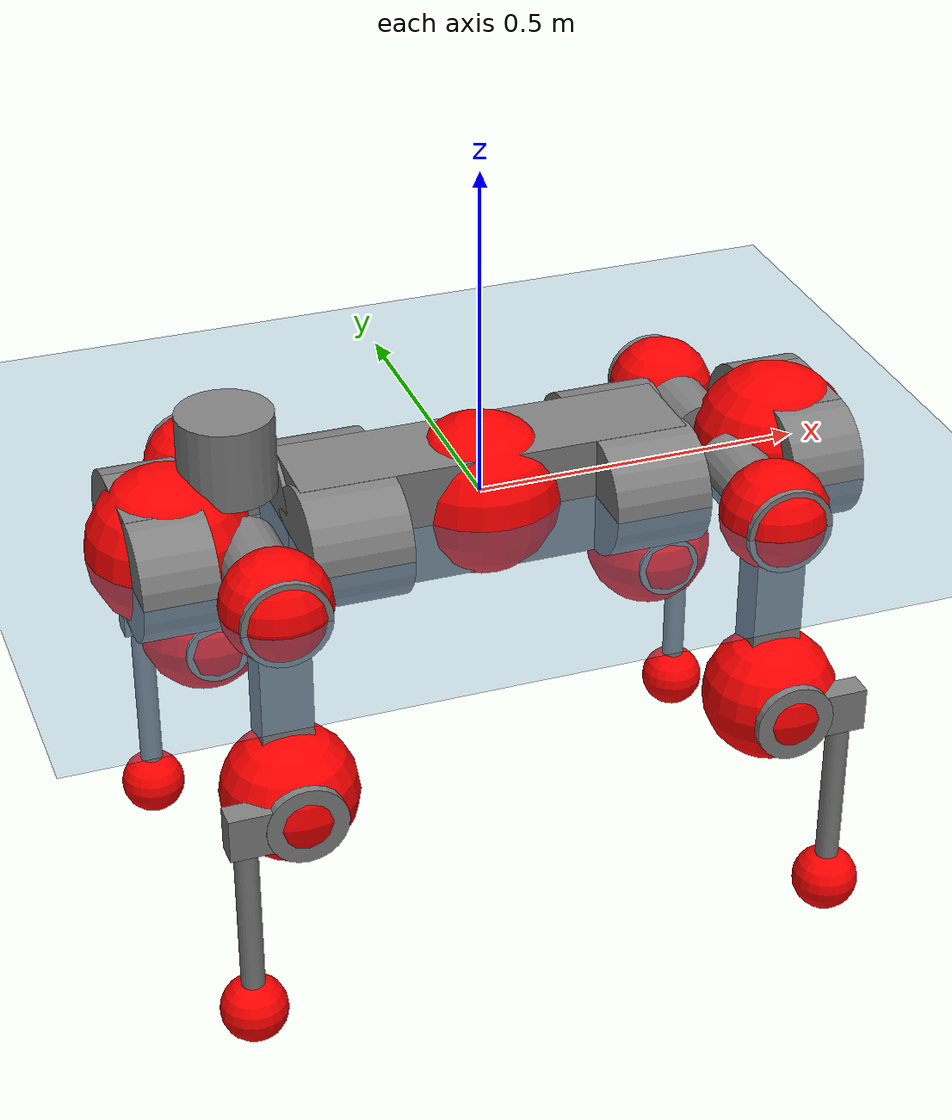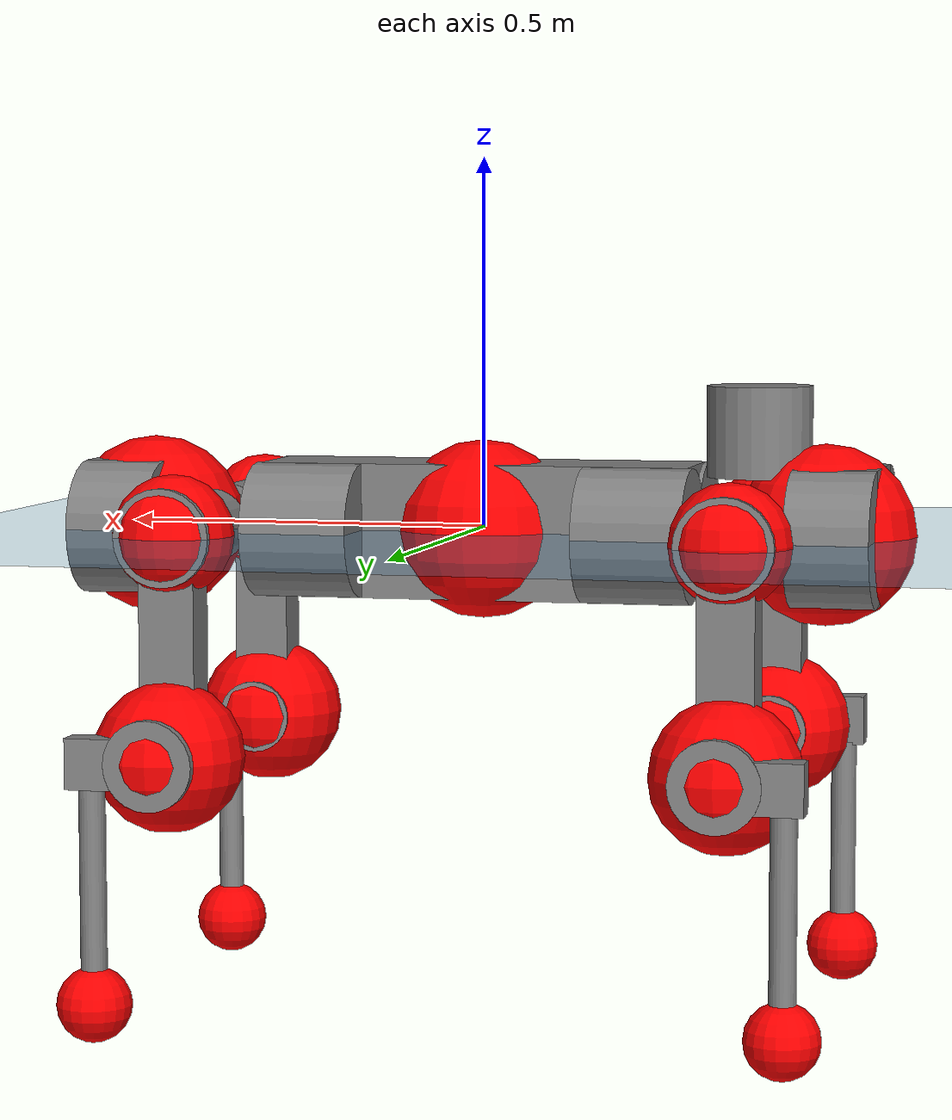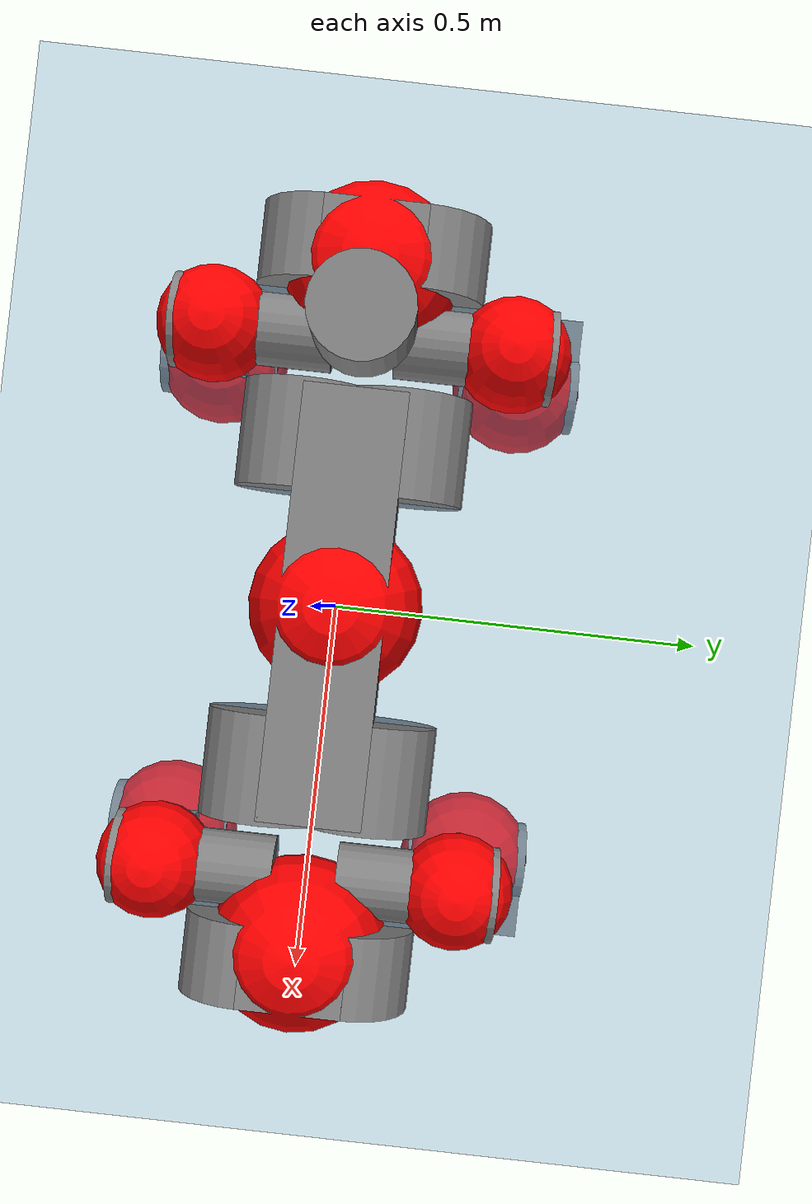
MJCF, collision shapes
<mujoco model="anymal_c">
  <compiler angle="radian" assetdir="assets" balanceinertia="true" inertiafromgeom="false"/>

  <option timestep="0.005" density="1.2" viscosity="2e-05"/>

  <size nkey="1"/>

  <visual>
    <quality shadowsize="8192"/>
    <map shadowclip="0.5"/>
  </visual>

  <default>
    <default class="/">
      <material specular="0" shininess="0.25"/>
      <geom contype="0" conaffinity="0" group="1" solref="-1000 -80"/>
      <site size="0.01 0.005 0.005" group="5"/>
      <general forcelimited="true" forcerange="-80 80" biastype="affine" gainprm="80" biasprm="0 -80 -2"/>
      <default class="anymal_c">
        <joint armature="0.01" damping="0.01" frictionloss="0.1"/>
        <default class="visual">
          <geom type="mesh" group="2"/>
          <default class="visual_zflip"/>
        </default>
        <default class="collision">
          <geom type="cylinder" group="3"/>
          <default class="foot">
            <geom size="0.03 0 0" type="sphere" condim="6" priority="1" friction="0.8 0.02 0.01" solimp="0.015 1 0.03"/>
          </default>
        </default>
      </default>
      <default class="reward_collision_sphere">
        <geom group="5" rgba="1 0 0 1"/>
      </default>
    </default>
  </default>

  <asset>
    <texture type="skybox" colorspace="auto" name="//unnamed_texture_0" builtin="gradient" rgb1="0.95 0.95 0.95" rgb2="0.95 0.95 0.95" width="100" height="600"/>
    <texture type="2d" colorspace="auto" name="texplane" builtin="checker" rgb1="0.345 0.575 0.748" rgb2="0.345 0.575 0.748" markrgb="1 1 1" width="512" height="512"/>
    <texture type="2d" colorspace="linear" name="base" file="base.png"/>
    <texture type="2d" colorspace="linear" name="top_shell" file="top_shell.png"/>
    <texture type="2d" colorspace="linear" name="bottom_shell" file="bottom_shell.png"/>
    <texture type="2d" colorspace="linear" name="remote" file="remote.png"/>
    <texture type="2d" colorspace="linear" name="hatch" file="hatch.png"/>
    <texture type="2d" colorspace="linear" name="handle" file="handle.png"/>
    <texture type="2d" colorspace="linear" name="face" file="face.png"/>
    <texture type="2d" colorspace="linear" name="battery" file="battery.png"/>
    <texture type="2d" colorspace="linear" name="lidar_cage" file="lidar_cage.png"/>
    <texture type="2d" colorspace="linear" name="depth_camera" file="depth_camera.png"/>
    <texture type="2d" colorspace="linear" name="wide_angle_camera" file="wide_angle_camera.png"/>
    <texture type="2d" colorspace="linear" name="lidar" file="lidar.png"/>
    <texture type="2d" colorspace="linear" name="drive" file="drive.png"/>
    <texture type="2d" colorspace="linear" name="hip_l" file="hip_l.png"/>
    <texture type="2d" colorspace="linear" name="shank_l" file="shank_l.png"/>
    <texture type="2d" colorspace="linear" name="foot" file="foot.png"/>
    <texture type="2d" colorspace="linear" name="thigh" file="thigh.png"/>
    <texture type="2d" colorspace="linear" name="shank_r" file="shank_r.png"/>
    <texture type="2d" colorspace="linear" name="hip_r" file="hip_r.png"/>
    <material name="MatPlane" class="/" texture="texplane" texuniform="true" texrepeat="2 2" specular="0.9" shininess="0.5"/>
    <material name="black_plastic" class="/" rgba="0.007 0.007 0.007 1"/>
    <material name="green" class="/" rgba="0.052 0.178 0.033 1"/>
    <material name="red" class="/" rgba="0.178 0.006 0.005 1"/>
    <material name="yellow" class="/" rgba="0.178 0.119 0.006 1"/>
    <material name="lwl" class="/" rgba="0.8 0.8 0.8 1"/>
    <material name="base" class="/" texture="base"/>
    <material name="top_shell" class="/" texture="top_shell"/>
    <material name="bottom_shell" class="/" texture="bottom_shell"/>
    <material name="hip_l" class="/" texture="hip_l"/>
    <material name="thigh" class="/" texture="thigh"/>
    <material name="shank_l" class="/" texture="shank_l"/>
    <material name="foot" class="/" texture="foot"/>
    <material name="hip_r" class="/" texture="hip_r"/>
    <material name="shank" class="/" texture="shank_r"/>
    <material name="hatch" class="/" texture="hatch"/>
    <material name="remote" class="/" texture="remote"/>
    <material name="handle" class="/" texture="handle"/>
    <material name="face" class="/" texture="face"/>
    <material name="depth_camera" class="/" texture="depth_camera"/>
    <material name="wide_angle_camera" class="/" texture="wide_angle_camera"/>
    <material name="battery" class="/" texture="battery"/>
    <material name="lidar_cage" class="/" texture="lidar_cage"/>
    <material name="lidar" class="/" texture="lidar"/>
    <material name="drive" class="/" texture="drive"/>
    <mesh name="base_0" class="/" file="base_0.obj"/>
    <mesh name="base_1" class="/" file="base_1.obj"/>
    <mesh name="base_2" class="/" file="base_2.obj"/>
    <mesh name="base_3" class="/" file="base_3.obj"/>
    <mesh name="base_4" class="/" file="base_4.obj"/>
    <mesh name="base_5" class="/" file="base_5.obj"/>
    <mesh name="top_shell" class="/" file="top_shell.obj"/>
    <mesh name="bottom_shell" class="/" file="bottom_shell.obj"/>
    <mesh name="remote" class="/" file="remote.obj"/>
    <mesh name="handle" class="/" file="handle.obj"/>
    <mesh name="face" class="/" file="face.obj"/>
    <mesh name="wide_angle_camera" class="/" file="wide_angle_camera.obj"/>
    <mesh name="depth_camera" class="/" file="depth_camera.obj"/>
    <mesh name="battery" class="/" file="battery.obj"/>
    <mesh name="lidar_cage" class="/" file="lidar_cage.obj"/>
    <mesh name="lidar" class="/" file="lidar.obj"/>
    <mesh name="drive" class="/" file="drive.obj"/>
    <mesh name="hip_l" class="/" file="hip_l.obj"/>
    <mesh name="thigh" class="/" file="thigh.obj"/>
    <mesh name="shank_l" class="/" file="shank_l.obj"/>
    <mesh name="foot" class="/" file="foot.obj"/>
    <mesh name="hip_r" class="/" file="hip_r.obj"/>
    <mesh name="hatch" class="/" file="hatch.obj"/>
    <mesh name="shank_r" class="/" file="shank_r.obj"/>
  </asset>

  <worldbody>
    <geom name="floor" class="/" size="100 100 0.125" type="plane" group="0" material="MatPlane"/>
    <light name="toplight_shadow" class="/" pos="0 0 5" dir="0.0990148 0.0990148 -0.990148" type="directional" ambient="0.04 0.04 0.04" diffuse="0.55 0.55 0.55" specular="0.12 0.12 0.12"/>
    <light name="toplight_fill" class="/" pos="0 0 5" dir="0.0990148 0.0990148 -0.990148" type="directional" castshadow="false" ambient="0.04 0.04 0.04" diffuse="0.3 0.3 0.3" specular="0.08 0.08 0.08"/>
    <body name="trunk" childclass="anymal_c" pos="0.000402 -1.99041e-05 -0.00222365" quat="1 -0.000202012 0.000956086 2.78845e-05">
      <inertial pos="0.00280974 0.00101788 0.0521421" quat="0.506463 0.497928 0.493989 0.501536" mass="20.2878" diaginertia="0.803571 0.547699 0.25869"/>
      <joint name="//unnamed_joint_0" type="free" armature="0" damping="0" frictionloss="0"/>
      <geom name="//unnamed_geom_1" class="visual" material="green" mesh="base_0"/>
      <geom name="//unnamed_geom_2" class="visual" material="yellow" mesh="base_1"/>
      <geom name="//unnamed_geom_3" class="visual" material="red" mesh="base_2"/>
      <geom name="//unnamed_geom_4" class="visual" material="black_plastic" mesh="base_3"/>
      <geom name="//unnamed_geom_5" class="visual" material="lwl" mesh="base_4"/>
      <geom name="//unnamed_geom_6" class="visual" material="base" mesh="base_5"/>
      <geom name="trunk_1" class="collision" size="0.293823 0.0709227 0.0911864" type="box"/>
      <geom name="trunk_2" class="collision" size="0.0911864 0.0734557" pos="0.226621 0.0677739 0" quat="0.707107 0 0.707107 0"/>
      <geom name="trunk_3" class="collision" size="0.0911864 0.0734557" pos="-0.226621 0.0677739 0" quat="0.707107 0 0.707107 0"/>
      <geom name="trunk_4" class="collision" size="0.0911864 0.0734557" pos="0.226621 -0.0677739 0" quat="0.707107 0 0.707107 0"/>
      <geom name="trunk_5" class="collision" size="0.0911864 0.0734557" pos="-0.226621 -0.0677739 0" quat="0.707107 0 0.707107 0"/>
      <geom name="//unnamed_geom_12" class="visual" material="top_shell" mesh="top_shell"/>
      <geom name="//unnamed_geom_13" class="visual" material="bottom_shell" mesh="bottom_shell"/>
      <geom name="//unnamed_geom_14" class="visual" material="remote" mesh="remote"/>
      <geom name="//unnamed_geom_15" class="visual" material="handle" mesh="handle"/>
      <geom name="//unnamed_geom_16" class="visual" pos="0.431882 0 0" quat="1 0 0 0" material="face" mesh="face"/>
      <geom name="trunk_6" class="collision" size="0.055725 0.0709227 0.0911864" pos="0.489189 0 0" type="box"/>
      <geom name="//unnamed_geom_18" class="collision" size="0.0911864 0.055725" pos="0.489189 0.0677739 0" quat="0.707107 0 0.707107 0"/>
      <geom name="//unnamed_geom_19" class="collision" size="0.0911864 0.055725" pos="0.489189 -0.0677739 0" quat="0.707107 0 0.707107 0"/>
      <geom name="//unnamed_geom_20" class="visual" pos="0.481009 0 -0.0299636" quat="0.965926 0 0.258819 0" material="depth_camera" mesh="depth_camera"/>
      <geom name="//unnamed_geom_21" class="visual" pos="0.534513 0 0.0154103" material="wide_angle_camera" mesh="wide_angle_camera"/>
      <geom name="//unnamed_geom_22" class="visual_zflip" pos="-0.431882 0 0" quat="0 0 0 1" material="face" mesh="face"/>
      <geom name="trunk_7" class="collision" size="0.055725 0.0709227 0.0911864" pos="-0.489189 0 0" quat="0 0 0 1" type="box"/>
      <geom name="//unnamed_geom_24" class="collision" size="0.0911864 0.055725" pos="-0.489189 -0.0677739 0" quat="0 -0.707107 0 0.707107"/>
      <geom name="//unnamed_geom_25" class="collision" size="0.0911864 0.055725" pos="-0.489189 0.0677739 0" quat="0 -0.707107 0 0.707107"/>
      <geom name="//unnamed_geom_26" class="visual" pos="-0.481009 0 -0.0299636" quat="0 -0.258819 0 0.965926" material="depth_camera" mesh="depth_camera"/>
      <geom name="//unnamed_geom_27" class="visual_zflip" pos="-0.534513 0 0.0154103" quat="0 0 0 1" material="wide_angle_camera" mesh="wide_angle_camera"/>
      <geom name="//unnamed_geom_28" class="visual" material="battery" mesh="battery"/>
      <geom name="//unnamed_geom_29" class="visual" pos="0 0.0730604 0.0299996" quat="0.683013 -0.183013 0.183013 0.683013" material="depth_camera" mesh="depth_camera"/>
      <geom name="//unnamed_geom_30" class="visual" pos="0 -0.0730604 0.0299996" quat="0.683013 0.183013 0.183013 -0.683013" material="depth_camera" mesh="depth_camera"/>
      <geom name="//unnamed_geom_31" class="visual" pos="-0.379265 0 0.0756618" quat="1 0 0 0" material="lidar_cage" mesh="lidar_cage"/>
      <geom name="trunk_8" class="collision" size="0.0709227 0.0607909" pos="-0.379265 0 0.137426"/>
      <geom name="//unnamed_geom_33" class="visual" pos="-0.379265 -2.89692e-05 0.146382" quat="0.707107 0 0 -0.707107" material="lidar" mesh="lidar"/>
      <geom name="//unnamed_geom_34" class="visual" pos="0.312476 0.100714 -1.05593e-09" quat="0.258819 0.965926 0 0" material="drive" mesh="drive"/>
      <geom name="//unnamed_geom_35" class="visual" pos="0.312476 -0.100714 1.05593e-09" quat="0.258819 -0.965926 0 0" material="drive" mesh="drive"/>
      <geom name="//unnamed_geom_36" class="visual" pos="-0.312476 0.100714 1.05593e-09" quat="0 0 0.965926 -0.258819" material="drive" mesh="drive"/>
      <geom name="//unnamed_geom_37" class="visual" pos="-0.312476 -0.100714 -1.05593e-09" quat="0 0 -0.965926 -0.258819" material="drive" mesh="drive"/>
      <geom name="//unnamed_geom_38" class="visual" pos="0.120865 0 0.0751471" quat="1 0 0 0" material="hatch" mesh="hatch"/>
      <geom name="//unnamed_geom_39" class="reward_collision_sphere" size="0.121582"/>
      <geom name="//unnamed_geom_40" class="reward_collision_sphere" size="0.121582" pos="0.468871 0 0"/>
      <geom name="//unnamed_geom_41" class="reward_collision_sphere" size="0.121582" pos="-0.468871 0 0"/>
      <site name="imu" pos="0.258258 0.00687375 0.0426695" size="0.0101318"/>
      <camera name="track" pos="0 -1.9364 0" quat="0.707107 0.707107 0 0" mode="trackcom"/>
      <camera name="ego_camera" pos="0.468871 0 -0.0411765" quat="-0.5 -0.5 0.5 0.5"/>
      <body name="LF_HIP" pos="0.312541 0.100053 0.000921801" quat="0.258795 0.965932 -0.000111667 1.9968e-05">
        <inertial pos="0.0573163 -0.0148509 -0.0105415" quat="-0.12093 0.714387 -0.140301 0.674791" mass="2.90902" diaginertia="0.0072837 0.00424711 0.0038175"/>
        <joint name="LF_HAA" pos="0 0 0" axis="0.99999 -0.00426633 0.00157408" range="-0.712713 0.478612" armature="0.0101511" damping="0.0068034" frictionloss="0.0985928"/>
        <geom name="//unnamed_geom_42" class="visual" pos="0 -6.21158e-05 1.02025e-05" quat="0.258819 -0.965926 0 0" material="hip_l" mesh="hip_l"/>
        <geom name="//unnamed_geom_43" class="visual" pos="0.0624119 -0.0746762 -0.0435671" quat="0.183013 -0.683013 0.683013 0.183013" material="drive" mesh="drive"/>
        <geom name="//unnamed_geom_44" class="collision" size="0.0506591 0.0709227" pos="0.0624119 -0.0115795 -0.00710809" quat="-0.353553 -0.612372 0.612372 -0.353553"/>
        <body name="LF_THIGH" pos="0.0617476 -0.0706874 -0.0419614" quat="0.183016 -0.683014 0.68301 0.183014">
          <inertial pos="0.0323029 -0.000263314 -0.253098" quat="0.99294 -0.00710734 -0.0848279 0.0826056" mass="3.10943" diaginertia="0.0362673 0.0249374 0.00467257"/>
          <joint name="LF_HFE" pos="0 0 0" axis="0.999999 2.67987e-05 0.00127238" stiffness="0.00475014" range="-3.13743 3.14029" armature="0.00983944" damping="0.0108643" frictionloss="0.10158"/>
          <geom name="//unnamed_geom_45" class="visual" pos="0.00146707 2.31176e-06 0" quat="0.707107 0 0 -0.707107" material="thigh" mesh="thigh"/>
          <geom name="//unnamed_geom_46" class="collision" size="0.0658568 0.0405273" pos="0.0416774 0 0" quat="0.5 0.5 -0.5 -0.5"/>
          <geom name="//unnamed_geom_47" class="collision" size="0.0379943 0.0303955 0.143177" pos="0.0312581 0 -0.14547" quat="0.707107 0 0 -0.707107" type="box"/>
          <geom name="//unnamed_geom_48" class="visual" pos="0.104506 0 -0.293382" quat="1 0 0 0" material="drive" mesh="drive"/>
          <geom name="//unnamed_geom_49" class="collision" size="0.0506591 0.0709227" pos="0.0315706 0 -0.293382" quat="0.707107 0 0.707107 0"/>
          <geom name="//unnamed_geom_50" class="reward_collision_sphere" size="0.0810546" pos="0.0260484 0 0"/>
          <body name="LF_SHANK" pos="0.103682 -0.000710537 -0.293757" quat="1 2.96656e-06 -1.04242e-05 7.52671e-06">
            <inertial pos="0.00324899 -0.0613179 -0.0830362" quat="0.992862 -0.116586 -0.000208508 -0.0251427" mass="0.609986" diaginertia="0.0121844 0.00790993 0.00129459"/>
            <joint name="LF_KFE" pos="0 0 0" axis="1 -0.000285113 0.000431498" range="-3.18787 3.13365" armature="0.0103324" damping="0.0112192" frictionloss="0.112962"/>
            <geom name="//unnamed_geom_51" class="visual" pos="0.00047838 0.00255075 0" quat="0.707107 0 0 -0.707107" material="shank_l" mesh="shank_l"/>
            <geom name="LF_kfe_act" class="collision" size="0.0607909 0.0202636" pos="0.0208387 0 0" quat="0.5 0.5 -0.5 -0.5"/>
            <geom name="//unnamed_geom_53" class="collision" size="0.058257 0.0341949 0.0192505" pos="0.0208387 -0.0556705 0" quat="0.5 0.5 -0.5 -0.5" type="box"/>
            <geom name="//unnamed_geom_54" class="visual" pos="0.0135971 -0.0843311 -0.34791" quat="0.382683 0 0 -0.92388" material="foot" mesh="foot"/>
            <geom name="LF_calf" class="collision" size="0.0177307 0.143114" pos="0.0135973 -0.0851531 -0.173955" quat="0.707107 0 0 -0.707107"/>
            <geom name="LF_foot" class="foot" size="0.0301703" pos="0.0135973 -0.0851531 -0.324749" quat="0.707107 0 0 -0.707107"/>
            <geom name="//unnamed_geom_57" class="reward_collision_sphere" size="0.101318" pos="-0.0520968 0 0"/>
            <geom name="//unnamed_geom_58" class="reward_collision_sphere" size="0.0506591" pos="0.0135973 -0.0851531 -0.324749"/>
            <site name="LF_foot" class="foot" pos="0.0135973 -0.0851531 -0.324749" quat="0.707107 0 0 -0.707107" size="0.0101318"/>
          </body>
        </body>
      </body>
      <body name="RF_HIP" pos="0.31355 -0.101599 0.000452834" quat="0.259538 -0.965732 0.000722183 -0.000272399">
        <inertial pos="0.0601855 0.0150721 -0.00849037" quat="0.138892 0.68469 0.133667 0.702881" mass="3.00958" diaginertia="0.00727576 0.00425017 0.00386312"/>
        <joint name="RF_HAA" pos="0 0 0" axis="0.999993 0.00358856 0.00132176" range="-0.537355 0.732844" armature="0.00980164" damping="0.0119652" frictionloss="0.101992"/>
        <geom name="//unnamed_geom_59" class="visual" pos="0 6.21154e-05 1.02025e-05" quat="0.258819 0.965926 0 0" material="hip_r" mesh="hip_r"/>
        <geom name="//unnamed_geom_60" class="visual" pos="0.0624119 0.0746762 -0.0435671" quat="0.183013 0.683013 0.683013 -0.183013" material="drive" mesh="drive"/>
        <geom name="//unnamed_geom_61" class="collision" size="0.0506591 0.0709227" pos="0.0624119 0.0115795 -0.00710809" quat="-0.353553 0.612372 0.612372 0.353553"/>
        <body name="RF_THIGH" pos="0.0624009 0.070128 -0.0427604" quat="0.183003 0.682701 0.683297 -0.183121">
          <inertial pos="0.0329798 -0.000329286 -0.251975" quat="0.993052 -0.00149521 -0.0791904 0.0870318" mass="3.23472" diaginertia="0.0372378 0.025093 0.00478969"/>
          <joint name="RF_HFE" pos="0 0 0" axis="1 -0.000880629 0.000208602" stiffness="0.00864676" range="-3.1451 3.14497" armature="0.0106216" damping="0" frictionloss="0.0959657"/>
          <geom name="//unnamed_geom_62" class="visual" pos="0.00146707 2.31176e-06 0" quat="0.707107 0 0 -0.707107" material="thigh" mesh="thigh"/>
          <geom name="//unnamed_geom_63" class="collision" size="0.0658568 0.0405273" pos="0.0416774 0 0" quat="0.5 0.5 0.5 0.5"/>
          <geom name="//unnamed_geom_64" class="collision" size="0.0379943 0.0303955 0.143177" pos="0.0312581 0 -0.14547" quat="0.707107 0 0 0.707107" type="box"/>
          <geom name="//unnamed_geom_65" class="visual" pos="0.104506 0 -0.293382" quat="1 0 0 0" material="drive" mesh="drive"/>
          <geom name="//unnamed_geom_66" class="collision" size="0.0506591 0.0709227" pos="0.0315706 0 -0.293382" quat="0.707107 0 0.707107 0"/>
          <geom name="//unnamed_geom_67" class="reward_collision_sphere" size="0.0810546" pos="0.0260484 0 0"/>
          <body name="RF_SHANK" pos="0.102062 -0.000165155 -0.293647" quat="1 -3.09495e-05 0.000116541 0.000131667">
            <inertial pos="0.00641622 0.0575139 -0.0817191" quat="0.993815 0.109762 -0.00484602 0.0161673" mass="0.596728" diaginertia="0.012124 0.00782952 0.00126249"/>
            <joint name="RF_KFE" pos="0 0 0" axis="0.999995 0.00302884 -0.000366558" stiffness="0.00108198" range="-3.13821 3.12939" armature="0.0101098" damping="0.00203573" frictionloss="0.104886"/>
            <geom name="//unnamed_geom_68" class="visual" pos="0.000478378 -0.00255074 0" quat="0.707107 0 0 0.707107" material="shank" mesh="shank_r"/>
            <geom name="RF_kfe_act" class="collision" size="0.0607909 0.0202636" pos="0.0208387 0 0" quat="0.5 0.5 0.5 0.5"/>
            <geom name="//unnamed_geom_70" class="collision" size="0.058257 0.0341949 0.0192505" pos="0.0208387 0.0556705 0" quat="0.5 0.5 0.5 0.5" type="box"/>
            <geom name="//unnamed_geom_71" class="visual" pos="0.0135974 0.0843311 -0.34791" quat="0.382683 0 0 0.92388" material="foot" mesh="foot"/>
            <geom name="RF_calf" class="collision" size="0.0177307 0.143114" pos="0.0135973 0.0851531 -0.173955" quat="0.707107 0 0 0.707107"/>
            <geom name="RF_foot" class="foot" size="0.0290744" pos="0.0135973 0.0851531 -0.324749" quat="0.707107 0 0 0.707107"/>
            <geom name="//unnamed_geom_74" class="reward_collision_sphere" size="0.101318" pos="-0.0520968 0 0"/>
            <geom name="//unnamed_geom_75" class="reward_collision_sphere" size="0.0506591" pos="0.0135973 0.0851531 -0.324749"/>
            <site name="RF_foot" class="foot" pos="0.0135973 0.0851531 -0.324749" quat="0.707107 0 0 0.707107" size="0.0101318"/>
          </body>
        </body>
      </body>
      <body name="LH_HIP" pos="-0.312087 0.100566 0.00143926" quat="0.000277076 9.75504e-05 0.966061 -0.258315">
        <inertial pos="0.0601114 0.0127209 -0.0108859" quat="0.135862 0.676622 0.124683 0.712866" mass="2.88305" diaginertia="0.00728479 0.00414781 0.00377196"/>
        <joint name="LH_HAA" pos="0 0 0" axis="0.999952 0.000388529 -0.00983257" range="-0.527207 0.761194" armature="0.0108755" damping="0.0119332" frictionloss="0.100232"/>
        <geom name="//unnamed_geom_76" class="visual" pos="0 6.21154e-05 1.02025e-05" quat="-0.258819 -0.965926 0 0" material="hip_r" mesh="hip_r"/>
        <geom name="//unnamed_geom_77" class="visual" pos="0.0624119 0.0746762 -0.0435671" quat="0.183013 0.683013 0.683013 -0.183013" material="drive" mesh="drive"/>
        <geom name="//unnamed_geom_78" class="collision" size="0.0506591 0.0709227" pos="0.0624119 0.0115795 -0.00710809" quat="-0.353553 0.612372 0.612372 0.353553"/>
        <body name="LH_THIGH" pos="0.062095 0.068946 -0.0412215" quat="0.182615 0.682777 0.683314 -0.183164">
          <inertial pos="0.0345429 -0.000857482 -0.25501" quat="0.992763 -0.00504054 -0.0807723 0.0887257" mass="3.2793" diaginertia="0.0392086 0.0262836 0.00500766"/>
          <joint name="LH_HFE" pos="0 0 0" axis="0.999929 0.0107879 -0.00505616" range="-3.14626 3.14364" armature="0.0102567" damping="0" frictionloss="0.0970312"/>
          <geom name="//unnamed_geom_79" class="visual" pos="0.00146707 2.31176e-06 0" quat="0.707107 0 0 -0.707107" material="thigh" mesh="thigh"/>
          <geom name="//unnamed_geom_80" class="collision" size="0.0658568 0.0405273" pos="0.0416774 0 0" quat="0.5 0.5 -0.5 -0.5"/>
          <geom name="//unnamed_geom_81" class="collision" size="0.0379943 0.0303955 0.143177" pos="0.0312581 0 -0.14547" quat="0.707107 0 0 -0.707107" type="box"/>
          <geom name="//unnamed_geom_82" class="visual" pos="0.104506 0 -0.293382" quat="1 0 0 0" material="drive" mesh="drive"/>
          <geom name="//unnamed_geom_83" class="collision" size="0.0506591 0.0709227" pos="0.0315706 0 -0.293382" quat="0.707107 0 0.707107 0"/>
          <geom name="//unnamed_geom_84" class="reward_collision_sphere" size="0.0810546" pos="0.0260484 0 0"/>
          <body name="LH_SHANK" pos="0.104545 0.000287784 -0.295126" quat="1 -0.000704606 4.07542e-05 -3.76492e-05">
            <inertial pos="0.00354378 0.0594115 -0.0853087" quat="0.992804 0.116664 -0.010046 0.0250902" mass="0.609794" diaginertia="0.012405 0.00786398 0.0012699"/>
            <joint name="LH_KFE" pos="0 0 0" axis="0.999999 0.0014964 0.000738556" range="-3.13985 3.09225" armature="0.0110705" damping="0" frictionloss="0.100205"/>
            <geom name="//unnamed_geom_85" class="visual" pos="0.000478378 -0.00255074 0" quat="-0.707107 0 0 -0.707107" material="shank" mesh="shank_r"/>
            <geom name="LH_kfe_act" class="collision" size="0.0607909 0.0202636" pos="0.0208387 0 0" quat="0.5 0.5 -0.5 -0.5"/>
            <geom name="//unnamed_geom_87" class="collision" size="0.058257 0.0341949 0.0192505" pos="0.0208387 0.0556705 0" quat="0.5 0.5 -0.5 -0.5" type="box"/>
            <geom name="//unnamed_geom_88" class="visual" pos="0.0135974 0.0843311 -0.34791" quat="-0.382683 0 0 -0.92388" material="foot" mesh="foot"/>
            <geom name="LH_calf" class="collision" size="0.0177307 0.143114" pos="0.0135973 0.0851531 -0.173955" quat="0.707107 0 0 -0.707107"/>
            <geom name="LH_foot" class="foot" size="0.030688" pos="0.0135973 0.0851531 -0.324749" quat="0.707107 0 0 -0.707107"/>
            <geom name="//unnamed_geom_91" class="reward_collision_sphere" size="0.101318" pos="-0.0520968 0 0"/>
            <geom name="//unnamed_geom_92" class="reward_collision_sphere" size="0.0506591" pos="0.0135973 0.0851531 -0.324749"/>
            <site name="LH_foot" class="foot" pos="0.0135973 0.0851531 -0.324749" quat="0.707107 0 0 -0.707107" size="0.0101318"/>
          </body>
        </body>
      </body>
      <body name="RH_HIP" pos="-0.310008 -0.100685 0.00199057" quat="0.000212079 -6.38745e-05 -0.965912 -0.258872">
        <inertial pos="0.0578739 -0.0147767 -0.00865236" quat="-0.134545 0.705941 -0.13114 0.682897" mass="2.88232" diaginertia="0.00758124 0.00428774 0.00388423"/>
        <joint name="RH_HAA" pos="0 0 0" axis="0.999914 -0.0118124 0.00563123" range="-0.707972 0.491394" armature="0.0101" damping="0.0111002" frictionloss="0.113405"/>
        <geom name="//unnamed_geom_93" class="visual" pos="0 -6.21158e-05 1.02025e-05" quat="-0.258819 0.965926 0 0" material="hip_l" mesh="hip_l"/>
        <geom name="//unnamed_geom_94" class="visual" pos="0.0624119 -0.0746762 -0.0435671" quat="-0.183013 0.683013 -0.683013 -0.183013" material="drive" mesh="drive"/>
        <geom name="//unnamed_geom_95" class="collision" size="0.0506591 0.0709227" pos="0.0624119 -0.0115795 -0.00710809" quat="0.353553 0.612372 -0.612372 0.353553"/>
        <body name="RH_THIGH" pos="0.061833 -0.0702533 -0.0435602" quat="-0.183009 0.683032 -0.683004 -0.182978">
          <inertial pos="0.031378 0.000479682 -0.254376" quat="0.99316 -0.00614487 -0.0810455 0.0838278" mass="3.13732" diaginertia="0.0383004 0.02583 0.00486029"/>
          <joint name="RH_HFE" pos="0 0 0" axis="0.999994 -0.00116198 0.00340046" stiffness="0.000496318" range="-3.14751 3.12639" armature="0.0101046" damping="0.013124" frictionloss="0.105261"/>
          <geom name="//unnamed_geom_96" class="visual" pos="0.00146707 2.31176e-06 0" quat="0.707107 0 0 -0.707107" material="thigh" mesh="thigh"/>
          <geom name="//unnamed_geom_97" class="collision" size="0.0658568 0.0405273" pos="0.0416774 0 0" quat="0.5 0.5 0.5 0.5"/>
          <geom name="//unnamed_geom_98" class="collision" size="0.0379943 0.0303955 0.143177" pos="0.0312581 0 -0.14547" quat="0.707107 0 0 0.707107" type="box"/>
          <geom name="//unnamed_geom_99" class="visual" pos="0.104506 0 -0.293382" quat="1 0 0 0" material="drive" mesh="drive"/>
          <geom name="//unnamed_geom_100" class="collision" size="0.0506591 0.0709227" pos="0.0315706 0 -0.293382" quat="0.707107 0 0.707107 0"/>
          <geom name="//unnamed_geom_101" class="reward_collision_sphere" size="0.0810546" pos="0.0260484 0 0"/>
          <body name="RH_SHANK" pos="0.102161 0.00124053 -0.294281" quat="0.999999 0.000976454 0.000514873 0.000402943">
            <inertial pos="0.00474329 -0.0590368 -0.0829707" quat="0.993217 -0.11511 0.000903032 -0.0163739" mass="0.612902" diaginertia="0.0124509 0.00779647 0.00126017"/>
            <joint name="RH_KFE" pos="0 0 0" axis="0.999895 0.00466708 -0.013733" range="-3.09097 3.14845" armature="0.0100284" damping="0" frictionloss="0.105511"/>
            <geom name="//unnamed_geom_102" class="visual" pos="0.00047838 0.00255075 0" quat="0.707107 0 0 -0.707107" material="shank_l" mesh="shank_l"/>
            <geom name="RH_kfe_act" class="collision" size="0.0607909 0.0202636" pos="0.0208387 0 0" quat="0.5 0.5 0.5 0.5"/>
            <geom name="//unnamed_geom_104" class="collision" size="0.058257 0.0341949 0.0192505" pos="0.0208387 -0.0556705 0" quat="0.5 0.5 0.5 0.5" type="box"/>
            <geom name="//unnamed_geom_105" class="visual" pos="0.0135971 -0.0843311 -0.34791" quat="0.382683 0 0 -0.92388" material="foot" mesh="foot"/>
            <geom name="RH_calf" class="collision" size="0.0177307 0.143114" pos="0.0135973 -0.0851531 -0.173955" quat="0.707107 0 0 0.707107"/>
            <geom name="RH_foot" class="foot" size="0.0309422" pos="0.0135973 -0.0851531 -0.324749" quat="0.707107 0 0 0.707107"/>
            <geom name="//unnamed_geom_108" class="reward_collision_sphere" size="0.101318" pos="-0.0520968 0 0"/>
            <geom name="//unnamed_geom_109" class="reward_collision_sphere" size="0.0506591" pos="0.0135973 -0.0851531 -0.324749"/>
            <site name="RH_foot" class="foot" pos="0.0135973 -0.0851531 -0.324749" quat="0.707107 0 0 0.707107" size="0.0101318"/>
          </body>
        </body>
      </body>
    </body>
  </worldbody>

  <contact>
    <pair class="/" geom1="floor" geom2="LF_foot" name="//unnamed_contact_0"/>
    <pair class="/" geom1="floor" geom2="RF_foot" name="//unnamed_contact_1"/>
    <pair class="/" geom1="floor" geom2="LH_foot" name="//unnamed_contact_2"/>
    <pair class="/" geom1="floor" geom2="RH_foot" name="//unnamed_contact_3"/>
  </contact>

  <actuator>
    <general name="LF_HAA" class="/" joint="LF_HAA" forcerange="-82.4082 82.4082" gainprm="82.3664" biasprm="0 -82.3664 -1.97028"/>
    <general name="LF_HFE" class="/" joint="LF_HFE" forcerange="-79.8557 79.8557" gainprm="82.3664" biasprm="0 -82.3664 -1.97028"/>
    <general name="LF_KFE" class="/" joint="LF_KFE" forcerange="-80.7578 80.7578" gainprm="82.3664" biasprm="0 -82.3664 -1.97028"/>
    <general name="RF_HAA" class="/" joint="RF_HAA" forcerange="-81.096 81.096" gainprm="82.3664" biasprm="0 -82.3664 -1.97028"/>
    <general name="RF_HFE" class="/" joint="RF_HFE" forcerange="-81.5759 81.5759" gainprm="82.3664" biasprm="0 -82.3664 -1.97028"/>
    <general name="RF_KFE" class="/" joint="RF_KFE" forcerange="-82.1878 82.1878" gainprm="82.3664" biasprm="0 -82.3664 -1.97028"/>
    <general name="LH_HAA" class="/" joint="LH_HAA" forcerange="-82.4088 82.4088" gainprm="82.3664" biasprm="0 -82.3664 -1.97028"/>
    <general name="LH_HFE" class="/" joint="LH_HFE" forcerange="-74.9663 74.9663" gainprm="82.3664" biasprm="0 -82.3664 -1.97028"/>
    <general name="LH_KFE" class="/" joint="LH_KFE" forcerange="-87.5694 87.5694" gainprm="82.3664" biasprm="0 -82.3664 -1.97028"/>
    <general name="RH_HAA" class="/" joint="RH_HAA" forcerange="-81.3016 81.3016" gainprm="82.3664" biasprm="0 -82.3664 -1.97028"/>
    <general name="RH_HFE" class="/" joint="RH_HFE" forcerange="-84.1939 84.1939" gainprm="82.3664" biasprm="0 -82.3664 -1.97028"/>
    <general name="RH_KFE" class="/" joint="RH_KFE" forcerange="-80.7654 80.7654" gainprm="82.3664" biasprm="0 -82.3664 -1.97028"/>
  </actuator>

  <sensor>
    <gyro site="imu" name="imu_angular_velocity"/>
    <velocimeter site="imu" name="imu_linear_velocity"/>
    <framelinvel objtype="site" objname="LF_foot" name="LF_foot_global_linear_velocity"/>
    <framelinvel objtype="site" objname="RF_foot" name="RF_foot_global_linear_velocity"/>
    <framelinvel objtype="site" objname="LH_foot" name="LH_foot_global_linear_velocity"/>
    <framelinvel objtype="site" objname="RH_foot" name="RH_foot_global_linear_velocity"/>
  </sensor>

  <keyframe>
    <key name="home" qpos="0 0 0.55 1 0 0 0 0 0.4 -0.8 0 -0.4 0.8 0 -0.4 0.8 0 0.4 -0.8"/>
  </keyframe>
</mujoco>
